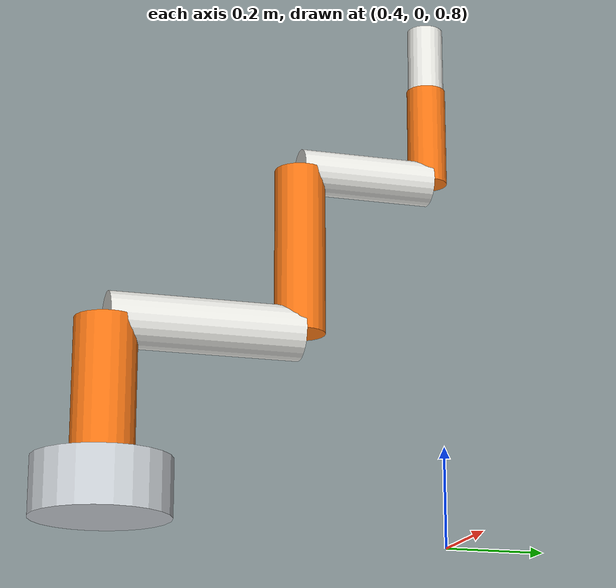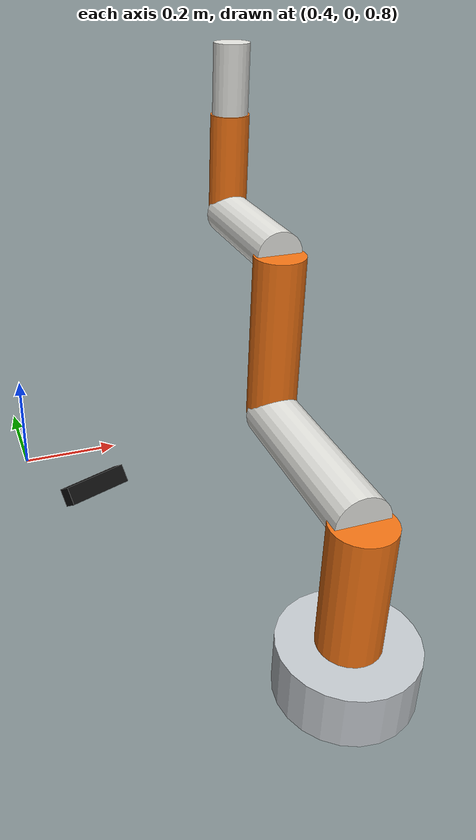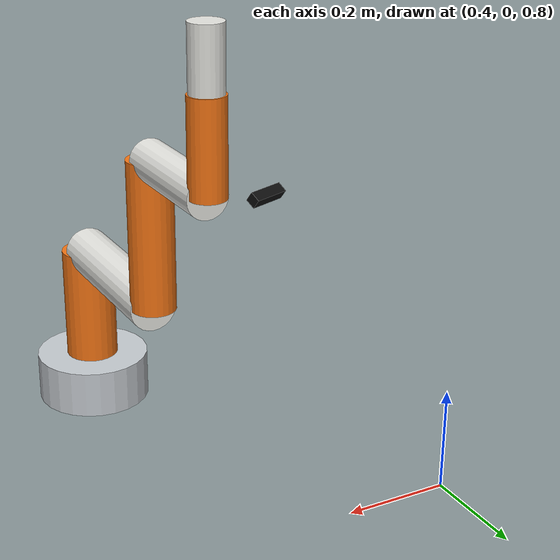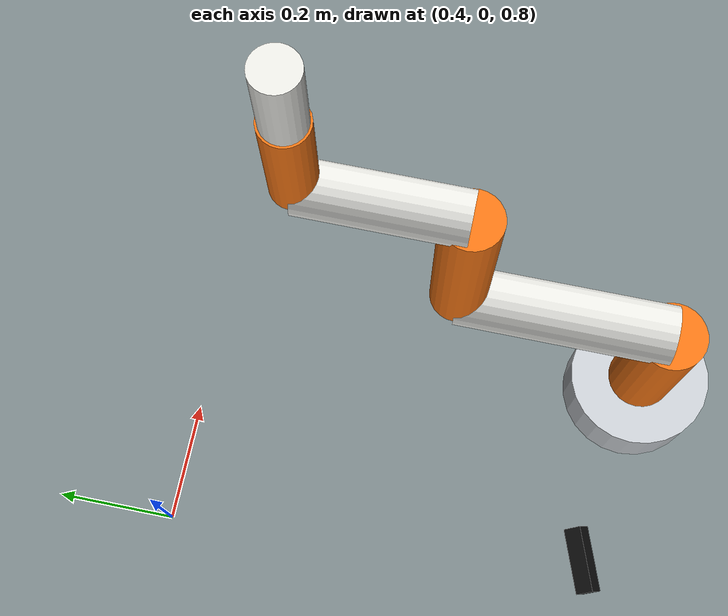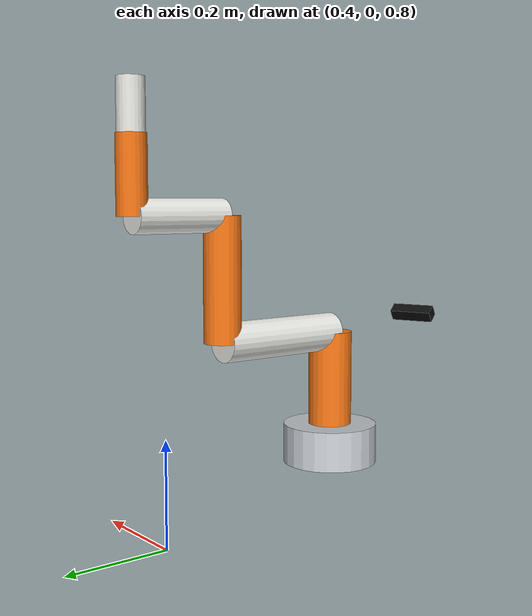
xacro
<?xml version="1.0"?>
<robot xmlns:xacro="http://www.ros.org/wiki/xacro" name="proposal_lbr_iisy6_r1300_cell">
  <link name="world"/>

  <link name="base_link">
    <visual>
      <origin xyz="0 0 0.05" rpy="0 0 0"/>
      <geometry><cylinder radius="0.12" length="0.10"/></geometry>
      <material name="kuka_silver"><color rgba="0.78 0.80 0.82 1"/></material>
    </visual>
    <collision>
      <origin xyz="0 0 0.05" rpy="0 0 0"/>
      <geometry><cylinder radius="0.12" length="0.10"/></geometry>
    </collision>
    <inertial>
      <mass value="5.0"/>
      <origin xyz="0 0 0.05" rpy="0 0 0"/>
      <inertia ixx="0.03" ixy="0" ixz="0" iyy="0.03" iyz="0" izz="0.03"/>
    </inertial>
  </link>

  <joint name="world_to_base_link" type="fixed">
    <parent link="world"/>
    <child link="base_link"/>
    <origin xyz="0.80 -0.75 0.75" rpy="0 0 1.5708"/>
  </joint>

  <xacro:macro name="box_link" params="name length radius color">
    <link name="${name}">
      <visual>
        <origin xyz="0 0 ${length / 2.0}" rpy="0 0 0"/>
        <geometry><cylinder radius="${radius}" length="${length}"/></geometry>
        <material name="${name}_material"><color rgba="${color}"/></material>
      </visual>
      <collision>
        <origin xyz="0 0 ${length / 2.0}" rpy="0 0 0"/>
        <geometry><cylinder radius="${radius}" length="${length}"/></geometry>
      </collision>
      <inertial>
        <mass value="2.0"/>
        <origin xyz="0 0 ${length / 2.0}" rpy="0 0 0"/>
        <inertia ixx="0.02" ixy="0" ixz="0" iyy="0.02" iyz="0" izz="0.01"/>
      </inertial>
    </link>
  </xacro:macro>

  <xacro:box_link name="link_1" length="0.24" radius="0.055" color="0.96 0.46 0.08 1"/>
  <xacro:box_link name="link_2" length="0.34" radius="0.048" color="0.90 0.90 0.88 1"/>
  <xacro:box_link name="link_3" length="0.30" radius="0.045" color="0.96 0.46 0.08 1"/>
  <xacro:box_link name="link_4" length="0.24" radius="0.040" color="0.90 0.90 0.88 1"/>
  <xacro:box_link name="link_5" length="0.18" radius="0.035" color="0.96 0.46 0.08 1"/>
  <xacro:box_link name="link_6" length="0.12" radius="0.032" color="0.90 0.90 0.88 1"/>

  <joint name="joint_a1" type="revolute">
    <parent link="base_link"/>
    <child link="link_1"/>
    <origin xyz="0 0 0.10" rpy="0 0 0"/>
    <axis xyz="0 0 1"/>
    <limit lower="-2.967" upper="2.967" effort="120" velocity="2.0"/>
  </joint>
  <joint name="joint_a2" type="revolute">
    <parent link="link_1"/>
    <child link="link_2"/>
    <origin xyz="0 0 0.24" rpy="0 1.5708 0"/>
    <axis xyz="0 1 0"/>
    <limit lower="-2.094" upper="2.094" effort="120" velocity="2.0"/>
  </joint>
  <joint name="joint_a3" type="revolute">
    <parent link="link_2"/>
    <child link="link_3"/>
    <origin xyz="0 0 0.34" rpy="0 -1.5708 0"/>
    <axis xyz="0 1 0"/>
    <limit lower="-2.967" upper="2.967" effort="90" velocity="2.0"/>
  </joint>
  <joint name="joint_a4" type="revolute">
    <parent link="link_3"/>
    <child link="link_4"/>
    <origin xyz="0 0 0.30" rpy="0 1.5708 0"/>
    <axis xyz="1 0 0"/>
    <limit lower="-2.967" upper="2.967" effort="70" velocity="2.0"/>
  </joint>
  <joint name="joint_a5" type="revolute">
    <parent link="link_4"/>
    <child link="link_5"/>
    <origin xyz="0 0 0.24" rpy="0 -1.5708 0"/>
    <axis xyz="0 1 0"/>
    <limit lower="-2.094" upper="2.094" effort="50" velocity="2.0"/>
  </joint>
  <joint name="joint_a6" type="revolute">
    <parent link="link_5"/>
    <child link="link_6"/>
    <origin xyz="0 0 0.18" rpy="0 0 0"/>
    <axis xyz="0 0 1"/>
    <limit lower="-3.054" upper="3.054" effort="40" velocity="2.0"/>
  </joint>

  <link name="tool0"/>
  <joint name="link_6_to_tool0" type="fixed">
    <parent link="link_6"/>
    <child link="tool0"/>
    <origin xyz="0 0 0.12" rpy="0 0 0"/>
  </joint>

  <link name="peg_tip"/>
  <joint name="tool0_to_peg_tip" type="fixed">
    <parent link="tool0"/>
    <child link="peg_tip"/>
    <origin xyz="0 0 0.11" rpy="0 0 0"/>
  </joint>

  <link name="d405_camera_link">
    <visual>
      <geometry><box size="0.09 0.025 0.025"/></geometry>
      <material name="camera_dark"><color rgba="0.05 0.05 0.05 1"/></material>
    </visual>
    <collision>
      <geometry><box size="0.09 0.025 0.025"/></geometry>
    </collision>
  </link>
  <joint name="world_to_d405_camera_link" type="fixed">
    <parent link="world"/>
    <child link="d405_camera_link"/>
    <origin xyz="0.42 -0.65 1.18" rpy="0.95 0 0.35"/>
  </joint>

  <link name="d405_camera_optical_frame"/>
  <joint name="d405_camera_link_to_optical" type="fixed">
    <parent link="d405_camera_link"/>
    <child link="d405_camera_optical_frame"/>
    <origin xyz="0 0 0" rpy="-1.5708 0 -1.5708"/>
  </joint>
</robot>
